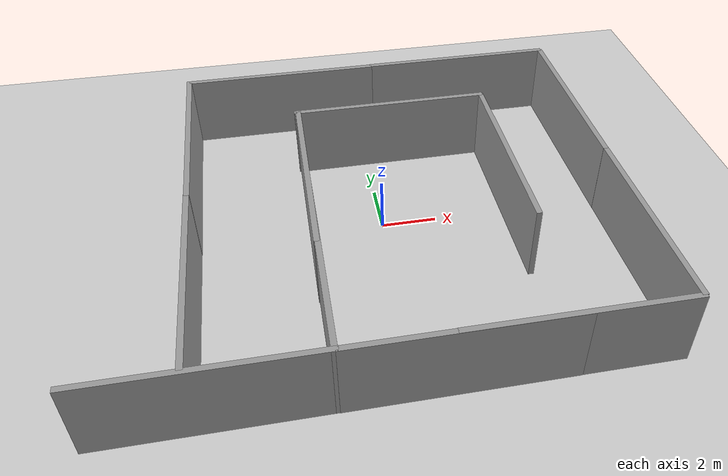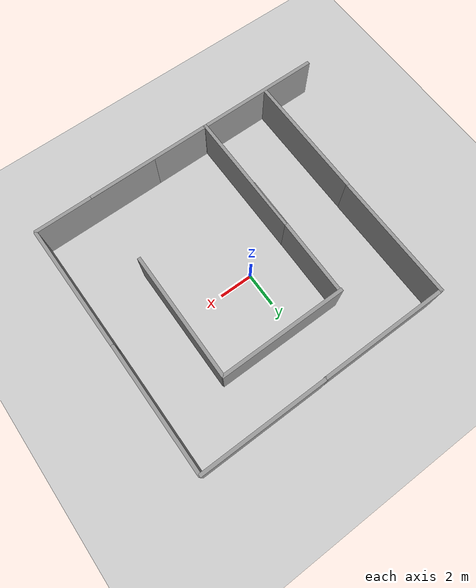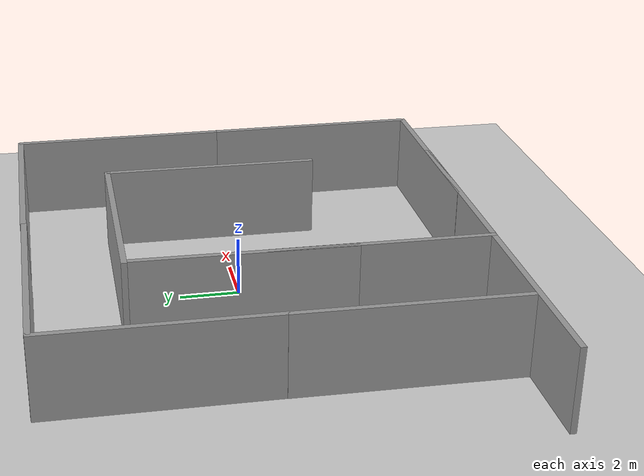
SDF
<sdf version="1.4">
 <world name="default">
  <light name="sun" type="directional">
   <pose>0 0 10 0 -0 0</pose>
   <diffuse>0.8 0.8 0.8 1</diffuse>
   <specular>0.2 0.2 0.2 1</specular>
   <attenuation>
    <range>1000</range>
    <constant>0.9</constant>
    <linear>0.01</linear>
    <quadratic>0.001</quadratic>
   </attenuation>
   <direction>-0.5 0.1 -0.9</direction>
  </light>
  <model name="ground_plane">
   <static>1</static>
   <link name="link">
    <collision name="collision">
     <geometry><plane><normal>0 0 1</normal><size>100 100</size></plane></geometry>
     <surface><friction><ode><mu>100</mu><mu2>50</mu2></ode></friction></surface>
    </collision>
    <visual name="visual">
     <cast_shadows>0</cast_shadows>
     <geometry><plane><normal>0 0 1</normal><size>100 100</size></plane></geometry>
     <material>
      <script><uri>file://media/materials/scripts/gazebo.material</uri><name>Gazebo/Grey</name></script>
     </material>
    </visual>
    <velocity_decay><linear>0</linear><angular>0</angular></velocity_decay>
   </link>
  </model>
  <physics type="ode">
   <max_step_size>0.001</max_step_size>
   <real_time_factor>1</real_time_factor>
   <real_time_update_rate>0</real_time_update_rate>
   <gravity>0 0 -9.8</gravity>
  </physics>
  <scene><ambient>0.4 0.4 0.4 1</ambient><background>0.7 0.7 0.7 1</background><shadows>1</shadows></scene>
  <spherical_coordinates>
   <surface_model>EARTH_WGS84</surface_model>
   <latitude_deg>0</latitude_deg>
   <longitude_deg>0</longitude_deg>
   <elevation>0</elevation>
   <heading_deg>0</heading_deg>
  </spherical_coordinates>
  <model name="grey_wall">
   <static>1</static>
   <link name="link">
    <pose>0 0 1.4 0 -0 0</pose>
    <collision name="collision"><geometry><box><size>7.5 0.2 2.8</size></box></geometry></collision>
    <visual name="visual">
     <cast_shadows>0</cast_shadows>
     <geometry><box><size>7.5 0.2 2.8</size></box></geometry>
     <material>
      <script>
       <uri>model://grey_wall/materials/scripts</uri>
       <uri>model://grey_wall/materials/textures</uri>
       <name>vrc/grey_wall</name>
      </script>
     </material>
    </visual>
    <velocity_decay><linear>0</linear><angular>0</angular></velocity_decay>
   </link>
   <pose>-6.77591 -4.10103 0 0 -0 1.56676</pose>
  </model>
  <model name="grey_wall_0">
   <static>1</static>
   <link name="link">
    <pose>0 0 1.4 0 -0 0</pose>
    <collision name="collision"><geometry><box><size>7.5 0.2 2.8</size></box></geometry></collision>
    <visual name="visual">
     <cast_shadows>0</cast_shadows>
     <geometry><box><size>7.5 0.2 2.8</size></box></geometry>
     <material>
      <script>
       <uri>model://grey_wall/materials/scripts</uri>
       <uri>model://grey_wall/materials/textures</uri>
       <name>vrc/grey_wall</name>
      </script>
     </material>
    </visual>
    <velocity_decay><linear>0</linear><angular>0</angular></velocity_decay>
   </link>
   <pose>-6.75902 3.34127 0 0 -0 1.5729</pose>
  </model>
  <model name="grey_wall_1">
   <static>1</static>
   <link name="link">
    <pose>0 0 1.4 0 -0 0</pose>
    <collision name="collision"><geometry><box><size>7.5 0.2 2.8</size></box></geometry></collision>
    <visual name="visual">
     <cast_shadows>0</cast_shadows>
     <geometry><box><size>7.5 0.2 2.8</size></box></geometry>
     <material>
      <script>
       <uri>model://grey_wall/materials/scripts</uri>
       <uri>model://grey_wall/materials/textures</uri>
       <name>vrc/grey_wall</name>
      </script>
     </material>
    </visual>
    <velocity_decay><linear>0</linear><angular>0</angular></velocity_decay>
   </link>
   <pose>-3 7 0 0 -0 0</pose>
  </model>
  <model name="grey_wall_2">
   <static>1</static>
   <link name="link">
    <pose>0 0 1.4 0 -0 0</pose>
    <collision name="collision"><geometry><box><size>7.5 0.2 2.8</size></box></geometry></collision>
    <visual name="visual">
     <cast_shadows>0</cast_shadows>
     <geometry><box><size>7.5 0.2 2.8</size></box></geometry>
     <material>
      <script>
       <uri>model://grey_wall/materials/scripts</uri>
       <uri>model://grey_wall/materials/textures</uri>
       <name>vrc/grey_wall</name>
      </script>
     </material>
    </visual>
    <velocity_decay><linear>0</linear><angular>0</angular></velocity_decay>
   </link>
   <pose>-6.28602 -7.88523 0 0 -0 0</pose>
  </model>
  <model name="grey_wall_3">
   <static>1</static>
   <link name="link">
    <pose>0 0 1.4 0 -0 0</pose>
    <collision name="collision"><geometry><box><size>7.5 0.2 2.8</size></box></geometry></collision>
    <visual name="visual">
     <cast_shadows>0</cast_shadows>
     <geometry><box><size>7.5 0.2 2.8</size></box></geometry>
     <material>
      <script>
       <uri>model://grey_wall/materials/scripts</uri>
       <uri>model://grey_wall/materials/textures</uri>
       <name>vrc/grey_wall</name>
      </script>
     </material>
    </visual>
    <velocity_decay><linear>0</linear><angular>0</angular></velocity_decay>
   </link>
   <pose>4.4339 7.01989 0 0 -0 0</pose>
  </model>
  <model name="grey_wall_4">
   <static>1</static>
   <link name="link">
    <pose>0 0 1.4 0 -0 0</pose>
    <collision name="collision"><geometry><box><size>7.5 0.2 2.8</size></box></geometry></collision>
    <visual name="visual">
     <cast_shadows>0</cast_shadows>
     <geometry><box><size>7.5 0.2 2.8</size></box></geometry>
     <material>
      <script>
       <uri>model://grey_wall/materials/scripts</uri>
       <uri>model://grey_wall/materials/textures</uri>
       <name>vrc/grey_wall</name>
      </script>
     </material>
    </visual>
    <velocity_decay><linear>0</linear><angular>0</angular></velocity_decay>
   </link>
   <pose>-2.647 -4.23549 0 0 -0 1.56895</pose>
  </model>
  <model name="grey_wall_5">
   <static>1</static>
   <link name="link">
    <pose>0 0 1.4 0 -0 0</pose>
    <collision name="collision"><geometry><box><size>7.5 0.2 2.8</size></box></geometry></collision>
    <visual name="visual">
     <cast_shadows>0</cast_shadows>
     <geometry><box><size>7.5 0.2 2.8</size></box></geometry>
     <material>
      <script>
       <uri>model://grey_wall/materials/scripts</uri>
       <uri>model://grey_wall/materials/textures</uri>
       <name>vrc/grey_wall</name>
      </script>
     </material>
    </visual>
    <velocity_decay><linear>0</linear><angular>0</angular></velocity_decay>
   </link>
   <pose>-2.63654 0.269292 0 0 0 -1.57988</pose>
  </model>
  <model name="grey_wall_6">
   <static>1</static>
   <link name="link">
    <pose>0 0 1.4 0 -0 0</pose>
    <collision name="collision"><geometry><box><size>7.5 0.2 2.8</size></box></geometry></collision>
    <visual name="visual">
     <cast_shadows>0</cast_shadows>
     <geometry><box><size>7.5 0.2 2.8</size></box></geometry>
     <material>
      <script>
       <uri>model://grey_wall/materials/scripts</uri>
       <uri>model://grey_wall/materials/textures</uri>
       <name>vrc/grey_wall</name>
      </script>
     </material>
    </visual>
    <velocity_decay><linear>0</linear><angular>0</angular></velocity_decay>
   </link>
   <pose>1 4 0 0 -0 0</pose>
  </model>
  <model name="grey_wall_7">
   <static>1</static>
   <link name="link">
    <pose>0 0 1.4 0 -0 0</pose>
    <collision name="collision"><geometry><box><size>7.5 0.2 2.8</size></box></geometry></collision>
    <visual name="visual">
     <cast_shadows>0</cast_shadows>
     <geometry><box><size>7.5 0.2 2.8</size></box></geometry>
     <material>
      <script>
       <uri>model://grey_wall/materials/scripts</uri>
       <uri>model://grey_wall/materials/textures</uri>
       <name>vrc/grey_wall</name>
      </script>
     </material>
    </visual>
    <velocity_decay><linear>0</linear><angular>0</angular></velocity_decay>
   </link>
   <pose>4.6699 0.269386 0 0 0 -1.57294</pose>
  </model>
  <model name="grey_wall_8">
   <static>1</static>
   <link name="link">
    <pose>0 0 1.4 0 -0 0</pose>
    <collision name="collision"><geometry><box><size>7.5 0.2 2.8</size></box></geometry></collision>
    <visual name="visual">
     <cast_shadows>0</cast_shadows>
     <geometry><box><size>7.5 0.2 2.8</size></box></geometry>
     <material>
      <script>
       <uri>model://grey_wall/materials/scripts</uri>
       <uri>model://grey_wall/materials/textures</uri>
       <name>vrc/grey_wall</name>
      </script>
     </material>
    </visual>
    <velocity_decay><linear>0</linear><angular>0</angular></velocity_decay>
   </link>
   <pose>1.11554 -7.89445 0 0 -0 0</pose>
  </model>
  <model name="grey_wall_9">
   <static>1</static>
   <link name="link">
    <pose>0 0 1.4 0 -0 0</pose>
    <collision name="collision"><geometry><box><size>7.5 0.2 2.8</size></box></geometry></collision>
    <visual name="visual">
     <cast_shadows>0</cast_shadows>
     <geometry><box><size>7.5 0.2 2.8</size></box></geometry>
     <material>
      <script>
       <uri>model://grey_wall/materials/scripts</uri>
       <uri>model://grey_wall/materials/textures</uri>
       <name>vrc/grey_wall</name>
      </script>
     </material>
    </visual>
    <velocity_decay><linear>0</linear><angular>0</angular></velocity_decay>
   </link>
   <pose>8.16528 3.30305 0 0 0 -1.56524</pose>
  </model>
  <model name="grey_wall_10">
   <static>1</static>
   <link name="link">
    <pose>0 0 1.4 0 -0 0</pose>
    <collision name="collision"><geometry><box><size>7.5 0.2 2.8</size></box></geometry></collision>
    <visual name="visual">
     <cast_shadows>0</cast_shadows>
     <geometry><box><size>7.5 0.2 2.8</size></box></geometry>
     <material>
      <script>
       <uri>model://grey_wall/materials/scripts</uri>
       <uri>model://grey_wall/materials/textures</uri>
       <name>vrc/grey_wall</name>
      </script>
     </material>
    </visual>
    <velocity_decay><linear>0</linear><angular>0</angular></velocity_decay>
   </link>
   <pose>8.22829 -4.13628 0 0 0 -1.56083</pose>
  </model>
  <model name="grey_wall_11">
   <static>1</static>
   <link name="link">
    <pose>0 0 1.4 0 -0 0</pose>
    <collision name="collision"><geometry><box><size>7.5 0.2 2.8</size></box></geometry></collision>
    <visual name="visual">
     <cast_shadows>0</cast_shadows>
     <geometry><box><size>7.5 0.2 2.8</size></box></geometry>
     <material>
      <script>
       <uri>model://grey_wall/materials/scripts</uri>
       <uri>model://grey_wall/materials/textures</uri>
       <name>vrc/grey_wall</name>
      </script>
     </material>
    </visual>
    <velocity_decay><linear>0</linear><angular>0</angular></velocity_decay>
   </link>
   <pose>4.56844 -7.88641 0 0 -0 0</pose>
  </model>
 </world>
</sdf>
